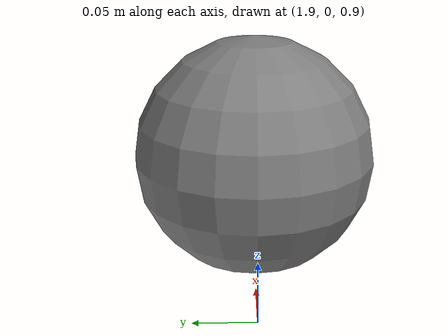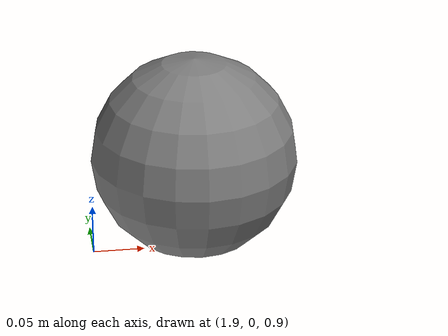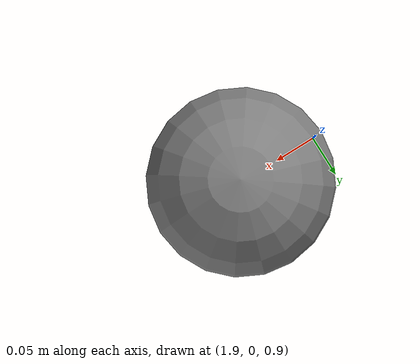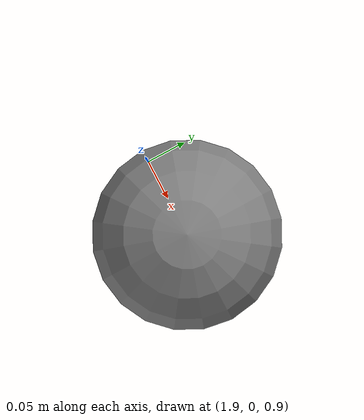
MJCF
<mujoco model="dt28_free">
        <option gravity="0 0 0" timestep="0.001"/>
        <worldbody>
            <body name="b1" pos="2 0 1">
                <freejoint name="J_free"/>
                <geom type="sphere" size="0.1" mass="1.0"/>
            </body>
        </worldbody>
        <tendon>
            <fixed name="T1"><joint joint="J_free" coef="1.5"/></fixed>
        </tendon>
    </mujoco>
